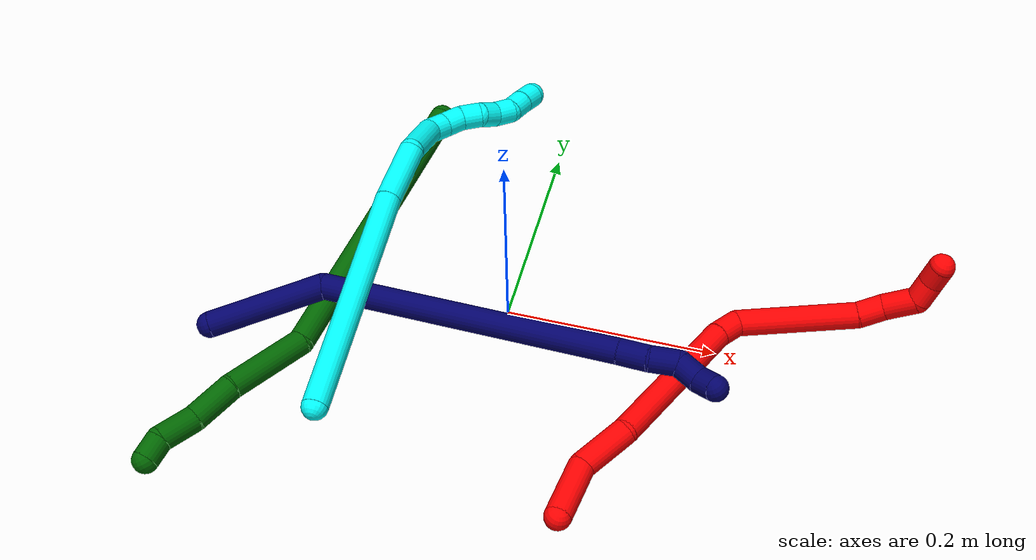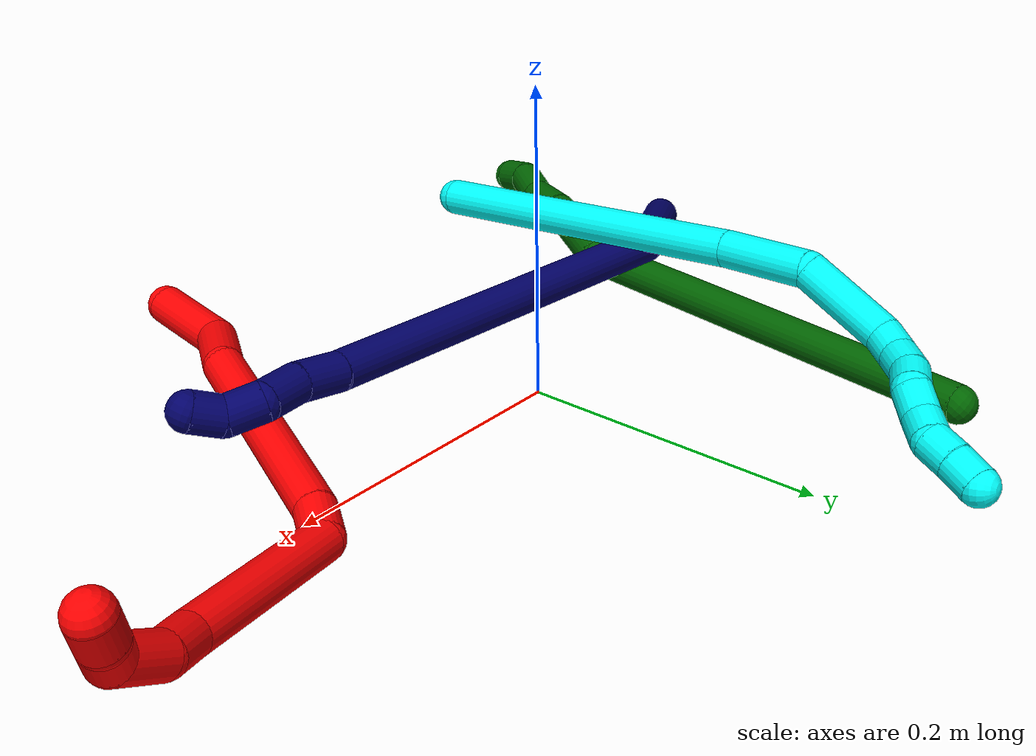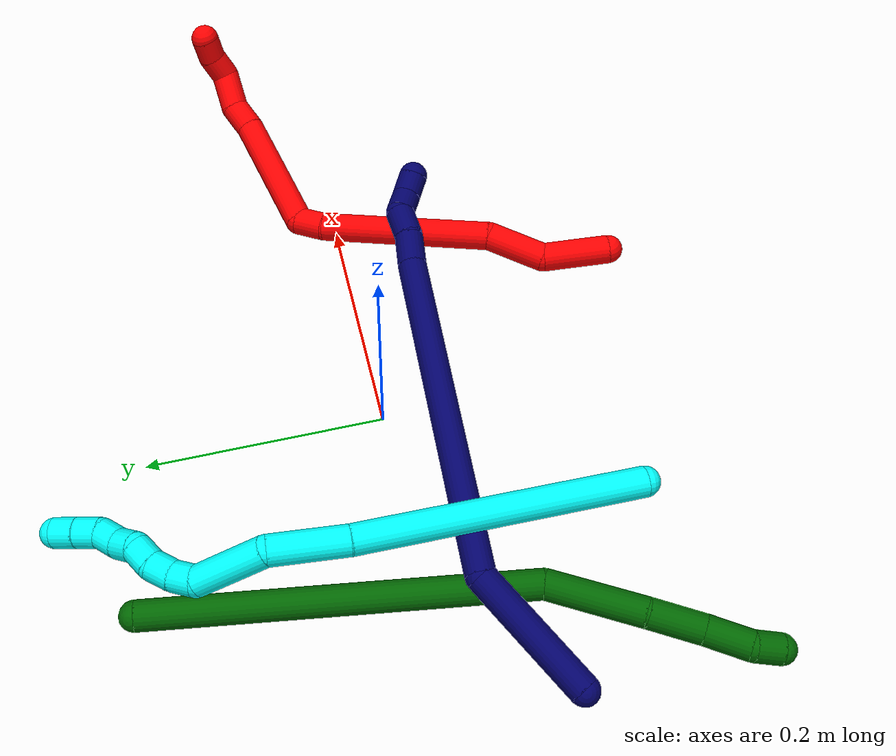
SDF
<sdf version="1.7">
 <world name="default">
  <model name="photoneo_s_sensor">
   <static>1</static>
   <pose>0 0 2 1.57079 1.57079 3.14159</pose>
   <link name="link">
    <inertial><mass>0.1</mass></inertial>
    <sensor name="sensor" type="depth">
     <update_rate>30</update_rate>
     <camera>
      <horizontal_fov>1.22</horizontal_fov>
      <image><width>1920</width><height>1200</height><format>B8G8R8</format></image>
      <clip><near>0.1</near><far>4</far></clip>
      <depth_camera><output>points</output></depth_camera>
     </camera>
     <plugin name="camera_plugin" filename="libgazebo_ros_depth_camera.so">
      <baseline>0.2</baseline>
      <alwaysOn>1</alwaysOn>
      <updateRate>0.0</updateRate>
      <cameraName>camera_ir</cameraName>
      <imageTopicName>/camera/color/image_raw</imageTopicName>
      <cameraInfoTopicName>/camera/color/camera_info</cameraInfoTopicName>
      <depthImageTopicName>/camera/depth/image_raw</depthImageTopicName>
      <depthImageCameraInfoTopicName>/camera/depth/camera_info</depthImageCameraInfoTopicName>
      <pointCloudTopicName>/camera/depth/points</pointCloudTopicName>
      <frameName>fr_optical</frameName>
      <pointCloudCutoff>0.1</pointCloudCutoff>
      <pointCloudCutoffMax>2.0</pointCloudCutoffMax>
      <distortionK1>0</distortionK1>
      <distortionK2>0</distortionK2>
      <distortionK3>0</distortionK3>
      <distortionT1>0</distortionT1>
      <distortionT2>0</distortionT2>
      <CxPrime>0</CxPrime>
      <Cx>0</Cx>
      <Cy>0</Cy>
      <focalLength>0</focalLength>
      <hackBaseline>0</hackBaseline>
     </plugin>
    </sensor>
   </link>
  </model>
  <model name="bin">
   <static>1</static>
   <link name="bottom">
    <collision name="collision-bottom">
     <pose>0 0 -0.01 0 -0 0</pose>
     <geometry><box><size>0.8 0.6 0.02</size></box></geometry>
     <surface>
      <friction><ode><mu>100</mu><mu2>100</mu2></ode></friction>
      <contact><collide_bitmask>65535</collide_bitmask></contact>
     </surface>
    </collision>
   </link>
   <link name="west_wall">
    <collision name="collision-west_wall">
     <pose>-0.41 0 0.1 0 -0 0</pose>
     <geometry><box><size>0.02 0.6 0.2</size></box></geometry>
     <surface>
      <friction><ode><mu>100</mu><mu2>100</mu2></ode></friction>
      <contact><collide_bitmask>65535</collide_bitmask></contact>
     </surface>
    </collision>
   </link>
   <link name="east_wall">
    <collision name="collision-east_wall">
     <pose>0.41 0 0.1 0 -0 0</pose>
     <geometry><box><size>0.02 0.6 0.2</size></box></geometry>
     <surface>
      <friction><ode><mu>100</mu><mu2>100</mu2></ode></friction>
      <contact><collide_bitmask>65535</collide_bitmask></contact>
     </surface>
    </collision>
   </link>
   <link name="south_wall">
    <collision name="collision-south_wall">
     <pose>0 -0.31 0.1 0 -0 0</pose>
     <geometry><box><size>0.8 0.02 0.2</size></box></geometry>
     <surface>
      <friction><ode><mu>100</mu><mu2>100</mu2></ode></friction>
      <contact><collide_bitmask>65535</collide_bitmask></contact>
     </surface>
    </collision>
   </link>
   <link name="north_wall">
    <collision name="collision-north_wall">
     <pose>0 0.31 0.1 0 -0 0</pose>
     <geometry><box><size>0.8 0.02 0.2</size></box></geometry>
     <surface>
      <friction><ode><mu>100</mu><mu2>100</mu2></ode></friction>
      <contact><collide_bitmask>65535</collide_bitmask></contact>
     </surface>
    </collision>
   </link>
  </model>
  <model name="2">
   <static>0</static>
   <link name="2">
    <collision name="collision-cylinder-e_1_1_4">
     <pose>0.02378 0.016461 -0.001014 -1.63232 0.964416 -1.01588</pose>
     <geometry><cylinder><radius>0.0125</radius><length>0.057879</length></cylinder></geometry>
     <surface>
      <friction><ode><mu>1.16</mu><mu2>1.16</mu2><slip1>0</slip1><slip2>0</slip2></ode></friction>
      <contact><ode><kp>1e+06</kp><kd>1</kd><max_vel>0</max_vel><min_depth>0.001</min_depth></ode></contact>
     </surface>
    </collision>
    <visual name="visual-cylinder-e_1_1_4">
     <pose>0.02378 0.016461 -0.001014 -1.63232 0.964416 -1.01588</pose>
     <geometry><cylinder><radius>0.0125</radius><length>0.057879</length></cylinder></geometry>
     <material><ambient>1 0 0 1</ambient></material>
    </visual>
    <collision name="collision-cylinder-e_2_4_5">
     <pose>0.05946 0.054369 -0.009586 -1.9096 0.482105 -0.668497</pose>
     <geometry><cylinder><radius>0.0125</radius><length>0.051329</length></cylinder></geometry>
     <surface>
      <friction><ode><mu>1.16</mu><mu2>1.16</mu2><slip1>0</slip1><slip2>0</slip2></ode></friction>
      <contact><ode><kp>1e+06</kp><kd>1</kd><max_vel>0</max_vel><min_depth>0.001</min_depth></ode></contact>
     </surface>
    </collision>
    <visual name="visual-cylinder-e_2_4_5">
     <pose>0.05946 0.054369 -0.009586 -1.9096 0.482105 -0.668497</pose>
     <geometry><cylinder><radius>0.0125</radius><length>0.051329</length></cylinder></geometry>
     <material><ambient>1 0 0 1</ambient></material>
    </visual>
    <collision name="collision-cylinder-e_3_5_6">
     <pose>0.11991 0.134198 -0.019774 -1.61583 0.693225 -0.722515</pose>
     <geometry><cylinder><radius>0.0125</radius><length>0.151956</length></cylinder></geometry>
     <surface>
      <friction><ode><mu>1.16</mu><mu2>1.16</mu2><slip1>0</slip1><slip2>0</slip2></ode></friction>
      <contact><ode><kp>1e+06</kp><kd>1</kd><max_vel>0</max_vel><min_depth>0.001</min_depth></ode></contact>
     </surface>
    </collision>
    <visual name="visual-cylinder-e_3_5_6">
     <pose>0.11991 0.134198 -0.019774 -1.61583 0.693225 -0.722515</pose>
     <geometry><cylinder><radius>0.0125</radius><length>0.151956</length></cylinder></geometry>
     <material><ambient>1 0 0 1</ambient></material>
    </visual>
    <collision name="collision-cylinder-e_4_6_7">
     <pose>0.174373 0.203882 -0.023126 -1.63443 0.481049 -0.511356</pose>
     <geometry><cylinder><radius>0.0125</radius><length>0.025549</length></cylinder></geometry>
     <surface>
      <friction><ode><mu>1.16</mu><mu2>1.16</mu2><slip1>0</slip1><slip2>0</slip2></ode></friction>
      <contact><ode><kp>1e+06</kp><kd>1</kd><max_vel>0</max_vel><min_depth>0.001</min_depth></ode></contact>
     </surface>
    </collision>
    <visual name="visual-cylinder-e_4_6_7">
     <pose>0.174373 0.203882 -0.023126 -1.63443 0.481049 -0.511356</pose>
     <geometry><cylinder><radius>0.0125</radius><length>0.025549</length></cylinder></geometry>
     <material><ambient>1 0 0 1</ambient></material>
    </visual>
    <collision name="collision-cylinder-e_5_7_8">
     <pose>0.167364 0.266506 -0.043461 -1.93587 -0.230951 0.333879</pose>
     <geometry><cylinder><radius>0.0125</radius><length>0.112883</length></cylinder></geometry>
     <surface>
      <friction><ode><mu>1.16</mu><mu2>1.16</mu2><slip1>0</slip1><slip2>0</slip2></ode></friction>
      <contact><ode><kp>1e+06</kp><kd>1</kd><max_vel>0</max_vel><min_depth>0.001</min_depth></ode></contact>
     </surface>
    </collision>
    <visual name="visual-cylinder-e_5_7_8">
     <pose>0.167364 0.266506 -0.043461 -1.93587 -0.230951 0.333879</pose>
     <geometry><cylinder><radius>0.0125</radius><length>0.112883</length></cylinder></geometry>
     <material><ambient>1 0 0 1</ambient></material>
    </visual>
    <collision name="collision-cylinder-e_6_8_9">
     <pose>0.154065 0.329092 -0.069154 -2.06549 -0.029623 0.049631</pose>
     <geometry><cylinder><radius>0.0125</radius><length>0.02561</length></cylinder></geometry>
     <surface>
      <friction><ode><mu>1.16</mu><mu2>1.16</mu2><slip1>0</slip1><slip2>0</slip2></ode></friction>
      <contact><ode><kp>1e+06</kp><kd>1</kd><max_vel>0</max_vel><min_depth>0.001</min_depth></ode></contact>
     </surface>
    </collision>
    <visual name="visual-cylinder-e_6_8_9">
     <pose>0.154065 0.329092 -0.069154 -2.06549 -0.029623 0.049631</pose>
     <geometry><cylinder><radius>0.0125</radius><length>0.02561</length></cylinder></geometry>
     <material><ambient>1 0 0 1</ambient></material>
    </visual>
    <collision name="collision-cylinder-e_7_9_10">
     <pose>0.148737 0.351502 -0.086062 -2.34196 -0.30825 0.704606</pose>
     <geometry><cylinder><radius>0.0125</radius><length>0.03262</length></cylinder></geometry>
     <surface>
      <friction><ode><mu>1.16</mu><mu2>1.16</mu2><slip1>0</slip1><slip2>0</slip2></ode></friction>
      <contact><ode><kp>1e+06</kp><kd>1</kd><max_vel>0</max_vel><min_depth>0.001</min_depth></ode></contact>
     </surface>
    </collision>
    <visual name="visual-cylinder-e_7_9_10">
     <pose>0.148737 0.351502 -0.086062 -2.34196 -0.30825 0.704606</pose>
     <geometry><cylinder><radius>0.0125</radius><length>0.03262</length></cylinder></geometry>
     <material><ambient>1 0 0 1</ambient></material>
    </visual>
    <collision name="collision-cylinder-e_8_10_11">
     <pose>0.146324 0.366188 -0.10703 -2.80541 0.231797 -1.20263</pose>
     <geometry><cylinder><radius>0.0125</radius><length>0.022065</length></cylinder></geometry>
     <surface>
      <friction><ode><mu>1.16</mu><mu2>1.16</mu2><slip1>0</slip1><slip2>0</slip2></ode></friction>
      <contact><ode><kp>1e+06</kp><kd>1</kd><max_vel>0</max_vel><min_depth>0.001</min_depth></ode></contact>
     </surface>
    </collision>
    <visual name="visual-cylinder-e_8_10_11">
     <pose>0.146324 0.366188 -0.10703 -2.80541 0.231797 -1.20263</pose>
     <geometry><cylinder><radius>0.0125</radius><length>0.022065</length></cylinder></geometry>
     <material><ambient>1 0 0 1</ambient></material>
    </visual>
    <collision name="collision-cylinder-e_9_11_2">
     <pose>0.1492 0.370983 -0.127137 -3.01666 0.034002 -0.530834</pose>
     <geometry><cylinder><radius>0.0125</radius><length>0.02011</length></cylinder></geometry>
     <surface>
      <friction><ode><mu>1.16</mu><mu2>1.16</mu2><slip1>0</slip1><slip2>0</slip2></ode></friction>
      <contact><ode><kp>1e+06</kp><kd>1</kd><max_vel>0</max_vel><min_depth>0.001</min_depth></ode></contact>
     </surface>
    </collision>
    <visual name="visual-cylinder-e_9_11_2">
     <pose>0.1492 0.370983 -0.127137 -3.01666 0.034002 -0.530834</pose>
     <geometry><cylinder><radius>0.0125</radius><length>0.02011</length></cylinder></geometry>
     <material><ambient>1 0 0 1</ambient></material>
    </visual>
    <collision name="collision-sphere-2">
     <pose>0.149542 0.372235 -0.137108 0 -0 0</pose>
     <geometry><sphere><radius>0.0125</radius></sphere></geometry>
     <surface>
      <friction><ode><mu>1.16</mu><mu2>1.16</mu2><slip1>0</slip1><slip2>0</slip2></ode></friction>
      <contact><ode><kp>1e+06</kp><kd>1</kd><max_vel>0</max_vel><min_depth>0.001</min_depth></ode></contact>
     </surface>
    </collision>
    <visual name="visual-sphere-2">
     <pose>0.149542 0.372235 -0.137108 0 -0 0</pose>
     <geometry><sphere><radius>0.0125</radius></sphere></geometry>
     <material><ambient>1 0 0 1</ambient></material>
    </visual>
    <collision name="collision-sphere-11">
     <pose>0.148858 0.369731 -0.117167 0 -0 0</pose>
     <geometry><sphere><radius>0.0125</radius></sphere></geometry>
     <surface>
      <friction><ode><mu>1.16</mu><mu2>1.16</mu2><slip1>0</slip1><slip2>0</slip2></ode></friction>
      <contact><ode><kp>1e+06</kp><kd>1</kd><max_vel>0</max_vel><min_depth>0.001</min_depth></ode></contact>
     </surface>
    </collision>
    <visual name="visual-sphere-11">
     <pose>0.148858 0.369731 -0.117167 0 -0 0</pose>
     <geometry><sphere><radius>0.0125</radius></sphere></geometry>
     <material><ambient>1 0 0 1</ambient></material>
    </visual>
    <collision name="collision-sphere-10">
     <pose>0.143789 0.362646 -0.096894 0 -0 0</pose>
     <geometry><sphere><radius>0.0125</radius></sphere></geometry>
     <surface>
      <friction><ode><mu>1.16</mu><mu2>1.16</mu2><slip1>0</slip1><slip2>0</slip2></ode></friction>
      <contact><ode><kp>1e+06</kp><kd>1</kd><max_vel>0</max_vel><min_depth>0.001</min_depth></ode></contact>
     </surface>
    </collision>
    <visual name="visual-sphere-10">
     <pose>0.143789 0.362646 -0.096894 0 -0 0</pose>
     <geometry><sphere><radius>0.0125</radius></sphere></geometry>
     <material><ambient>1 0 0 1</ambient></material>
    </visual>
    <collision name="collision-sphere-9">
     <pose>0.153686 0.340357 -0.07523 0 -0 0</pose>
     <geometry><sphere><radius>0.0125</radius></sphere></geometry>
     <surface>
      <friction><ode><mu>1.16</mu><mu2>1.16</mu2><slip1>0</slip1><slip2>0</slip2></ode></friction>
      <contact><ode><kp>1e+06</kp><kd>1</kd><max_vel>0</max_vel><min_depth>0.001</min_depth></ode></contact>
     </surface>
    </collision>
    <visual name="visual-sphere-9">
     <pose>0.153686 0.340357 -0.07523 0 -0 0</pose>
     <geometry><sphere><radius>0.0125</radius></sphere></geometry>
     <material><ambient>1 0 0 1</ambient></material>
    </visual>
    <collision name="collision-sphere-4">
     <pose>0.04756 0.032923 -0.002028 0 -0 0</pose>
     <geometry><sphere><radius>0.0125</radius></sphere></geometry>
     <surface>
      <friction><ode><mu>1.16</mu><mu2>1.16</mu2><slip1>0</slip1><slip2>0</slip2></ode></friction>
      <contact><ode><kp>1e+06</kp><kd>1</kd><max_vel>0</max_vel><min_depth>0.001</min_depth></ode></contact>
     </surface>
    </collision>
    <visual name="visual-sphere-4">
     <pose>0.04756 0.032923 -0.002028 0 -0 0</pose>
     <geometry><sphere><radius>0.0125</radius></sphere></geometry>
     <material><ambient>1 0 0 1</ambient></material>
    </visual>
    <collision name="collision-sphere-1">
     <geometry><sphere><radius>0.0125</radius></sphere></geometry>
     <surface>
      <friction><ode><mu>1.16</mu><mu2>1.16</mu2><slip1>0</slip1><slip2>0</slip2></ode></friction>
      <contact><ode><kp>1e+06</kp><kd>1</kd><max_vel>0</max_vel><min_depth>0.001</min_depth></ode></contact>
     </surface>
    </collision>
    <visual name="visual-sphere-1">
     <geometry><sphere><radius>0.0125</radius></sphere></geometry>
     <material><ambient>1 0 0 1</ambient></material>
    </visual>
    <collision name="collision-sphere-8">
     <pose>0.154444 0.317827 -0.063077 0 -0 0</pose>
     <geometry><sphere><radius>0.0125</radius></sphere></geometry>
     <surface>
      <friction><ode><mu>1.16</mu><mu2>1.16</mu2><slip1>0</slip1><slip2>0</slip2></ode></friction>
      <contact><ode><kp>1e+06</kp><kd>1</kd><max_vel>0</max_vel><min_depth>0.001</min_depth></ode></contact>
     </surface>
    </collision>
    <visual name="visual-sphere-8">
     <pose>0.154444 0.317827 -0.063077 0 -0 0</pose>
     <geometry><sphere><radius>0.0125</radius></sphere></geometry>
     <material><ambient>1 0 0 1</ambient></material>
    </visual>
    <collision name="collision-sphere-5">
     <pose>0.071359 0.075816 -0.017143 0 -0 0</pose>
     <geometry><sphere><radius>0.0125</radius></sphere></geometry>
     <surface>
      <friction><ode><mu>1.16</mu><mu2>1.16</mu2><slip1>0</slip1><slip2>0</slip2></ode></friction>
      <contact><ode><kp>1e+06</kp><kd>1</kd><max_vel>0</max_vel><min_depth>0.001</min_depth></ode></contact>
     </surface>
    </collision>
    <visual name="visual-sphere-5">
     <pose>0.071359 0.075816 -0.017143 0 -0 0</pose>
     <geometry><sphere><radius>0.0125</radius></sphere></geometry>
     <material><ambient>1 0 0 1</ambient></material>
    </visual>
    <collision name="collision-sphere-6">
     <pose>0.168462 0.19258 -0.022405 0 -0 0</pose>
     <geometry><sphere><radius>0.0125</radius></sphere></geometry>
     <surface>
      <friction><ode><mu>1.16</mu><mu2>1.16</mu2><slip1>0</slip1><slip2>0</slip2></ode></friction>
      <contact><ode><kp>1e+06</kp><kd>1</kd><max_vel>0</max_vel><min_depth>0.001</min_depth></ode></contact>
     </surface>
    </collision>
    <visual name="visual-sphere-6">
     <pose>0.168462 0.19258 -0.022405 0 -0 0</pose>
     <geometry><sphere><radius>0.0125</radius></sphere></geometry>
     <material><ambient>1 0 0 1</ambient></material>
    </visual>
    <collision name="collision-sphere-7">
     <pose>0.180284 0.215184 -0.023846 0 -0 0</pose>
     <geometry><sphere><radius>0.0125</radius></sphere></geometry>
     <surface>
      <friction><ode><mu>1.16</mu><mu2>1.16</mu2><slip1>0</slip1><slip2>0</slip2></ode></friction>
      <contact><ode><kp>1e+06</kp><kd>1</kd><max_vel>0</max_vel><min_depth>0.001</min_depth></ode></contact>
     </surface>
    </collision>
    <visual name="visual-sphere-7">
     <pose>0.180284 0.215184 -0.023846 0 -0 0</pose>
     <geometry><sphere><radius>0.0125</radius></sphere></geometry>
     <material><ambient>1 0 0 1</ambient></material>
    </visual>
    <inertial>
     <pose>0.122047 0.189725 -0.037098 0 -0 0</pose>
     <mass>0.5</mass>
     <inertia>
      <ixx>0.000193</ixx>
      <ixy>0</ixy>
      <ixz>0</ixz>
      <iyy>-9e-06</iyy>
      <iyz>0</iyz>
      <izz>-0.000566</izz>
     </inertia>
    </inertial>
   </link>
   <pose>0.105668 -0.227418 0.033177 -2.90918 -0.025899 2.04442</pose>
  </model>
  <model name="3">
   <static>0</static>
   <link name="3">
    <collision name="collision-cylinder-e_1_1_4">
     <pose>0.007689 0.003064 0.116987 -0.026188 0.065609 -0.000859</pose>
     <geometry><cylinder><radius>0.0125</radius><length>0.23456</length></cylinder></geometry>
     <surface>
      <friction><ode><mu>1.16</mu><mu2>1.16</mu2><slip1>0</slip1><slip2>0</slip2></ode></friction>
      <contact><ode><kp>1e+06</kp><kd>1</kd><max_vel>0</max_vel><min_depth>0.001</min_depth></ode></contact>
     </surface>
    </collision>
    <visual name="visual-cylinder-e_1_1_4">
     <pose>0.007689 0.003064 0.116987 -0.026188 0.065609 -0.000859</pose>
     <geometry><cylinder><radius>0.0125</radius><length>0.23456</length></cylinder></geometry>
     <material><ambient>0.003922 1 0.996078 1</ambient></material>
    </visual>
    <collision name="collision-cylinder-e_2_4_5">
     <pose>0.018826 0.004535 0.265219 0.050969 0.109756 0.002801</pose>
     <geometry><cylinder><radius>0.0125</radius><length>0.062949</length></cylinder></geometry>
     <surface>
      <friction><ode><mu>1.16</mu><mu2>1.16</mu2><slip1>0</slip1><slip2>0</slip2></ode></friction>
      <contact><ode><kp>1e+06</kp><kd>1</kd><max_vel>0</max_vel><min_depth>0.001</min_depth></ode></contact>
     </surface>
    </collision>
    <visual name="visual-cylinder-e_2_4_5">
     <pose>0.018826 0.004535 0.265219 0.050969 0.109756 0.002801</pose>
     <geometry><cylinder><radius>0.0125</radius><length>0.062949</length></cylinder></geometry>
     <material><ambient>0.003922 1 0.996078 1</ambient></material>
    </visual>
    <collision name="collision-cylinder-e_3_5_6">
     <pose>0.039703 0.007944 0.321644 -0.196141 0.596427 -0.060465</pose>
     <geometry><cylinder><radius>0.0125</radius><length>0.06206</length></cylinder></geometry>
     <surface>
      <friction><ode><mu>1.16</mu><mu2>1.16</mu2><slip1>0</slip1><slip2>0</slip2></ode></friction>
      <contact><ode><kp>1e+06</kp><kd>1</kd><max_vel>0</max_vel><min_depth>0.001</min_depth></ode></contact>
     </surface>
    </collision>
    <visual name="visual-cylinder-e_3_5_6">
     <pose>0.039703 0.007944 0.321644 -0.196141 0.596427 -0.060465</pose>
     <geometry><cylinder><radius>0.0125</radius><length>0.06206</length></cylinder></geometry>
     <material><ambient>0.003922 1 0.996078 1</ambient></material>
    </visual>
    <collision name="collision-cylinder-e_4_6_7">
     <pose>0.062358 0.009008 0.354539 0.472218 0.542884 0.133722</pose>
     <geometry><cylinder><radius>0.0125</radius><length>0.020232</length></cylinder></geometry>
     <surface>
      <friction><ode><mu>1.16</mu><mu2>1.16</mu2><slip1>0</slip1><slip2>0</slip2></ode></friction>
      <contact><ode><kp>1e+06</kp><kd>1</kd><max_vel>0</max_vel><min_depth>0.001</min_depth></ode></contact>
     </surface>
    </collision>
    <visual name="visual-cylinder-e_4_6_7">
     <pose>0.062358 0.009008 0.354539 0.472218 0.542884 0.133722</pose>
     <geometry><cylinder><radius>0.0125</radius><length>0.020232</length></cylinder></geometry>
     <material><ambient>0.003922 1 0.996078 1</ambient></material>
    </visual>
    <collision name="collision-cylinder-e_5_7_8">
     <pose>0.071213 -0.00086 0.36951 0.68485 0.369473 0.133028</pose>
     <geometry><cylinder><radius>0.0125</radius><length>0.020097</length></cylinder></geometry>
     <surface>
      <friction><ode><mu>1.16</mu><mu2>1.16</mu2><slip1>0</slip1><slip2>0</slip2></ode></friction>
      <contact><ode><kp>1e+06</kp><kd>1</kd><max_vel>0</max_vel><min_depth>0.001</min_depth></ode></contact>
     </surface>
    </collision>
    <visual name="visual-cylinder-e_5_7_8">
     <pose>0.071213 -0.00086 0.36951 0.68485 0.369473 0.133028</pose>
     <geometry><cylinder><radius>0.0125</radius><length>0.020097</length></cylinder></geometry>
     <material><ambient>0.003922 1 0.996078 1</ambient></material>
    </visual>
    <collision name="collision-cylinder-e_6_8_9">
     <pose>0.078623 -0.014746 0.381569 1.02799 0.386337 0.219993</pose>
     <geometry><cylinder><radius>0.0125</radius><length>0.020069</length></cylinder></geometry>
     <surface>
      <friction><ode><mu>1.16</mu><mu2>1.16</mu2><slip1>0</slip1><slip2>0</slip2></ode></friction>
      <contact><ode><kp>1e+06</kp><kd>1</kd><max_vel>0</max_vel><min_depth>0.001</min_depth></ode></contact>
     </surface>
    </collision>
    <visual name="visual-cylinder-e_6_8_9">
     <pose>0.078623 -0.014746 0.381569 1.02799 0.386337 0.219993</pose>
     <geometry><cylinder><radius>0.0125</radius><length>0.020069</length></cylinder></geometry>
     <material><ambient>0.003922 1 0.996078 1</ambient></material>
    </visual>
    <collision name="collision-cylinder-e_7_9_10">
     <pose>0.089749 -0.026216 0.392184 0.543242 0.824526 0.242399</pose>
     <geometry><cylinder><radius>0.0125</radius><length>0.020009</length></cylinder></geometry>
     <surface>
      <friction><ode><mu>1.16</mu><mu2>1.16</mu2><slip1>0</slip1><slip2>0</slip2></ode></friction>
      <contact><ode><kp>1e+06</kp><kd>1</kd><max_vel>0</max_vel><min_depth>0.001</min_depth></ode></contact>
     </surface>
    </collision>
    <visual name="visual-cylinder-e_7_9_10">
     <pose>0.089749 -0.026216 0.392184 0.543242 0.824526 0.242399</pose>
     <geometry><cylinder><radius>0.0125</radius><length>0.020009</length></cylinder></geometry>
     <material><ambient>0.003922 1 0.996078 1</ambient></material>
    </visual>
    <collision name="collision-cylinder-e_8_10_11">
     <pose>0.102018 -0.035729 0.404306 0.760598 0.514621 0.209617</pose>
     <geometry><cylinder><radius>0.0125</radius><length>0.020006</length></cylinder></geometry>
     <surface>
      <friction><ode><mu>1.16</mu><mu2>1.16</mu2><slip1>0</slip1><slip2>0</slip2></ode></friction>
      <contact><ode><kp>1e+06</kp><kd>1</kd><max_vel>0</max_vel><min_depth>0.001</min_depth></ode></contact>
     </surface>
    </collision>
    <visual name="visual-cylinder-e_8_10_11">
     <pose>0.102018 -0.035729 0.404306 0.760598 0.514621 0.209617</pose>
     <geometry><cylinder><radius>0.0125</radius><length>0.020006</length></cylinder></geometry>
     <material><ambient>0.003922 1 0.996078 1</ambient></material>
    </visual>
    <collision name="collision-cylinder-e_9_11_12">
     <pose>0.11129 -0.043855 0.419365 0.238126 0.449863 0.054729</pose>
     <geometry><cylinder><radius>0.0125</radius><length>0.02</length></cylinder></geometry>
     <surface>
      <friction><ode><mu>1.16</mu><mu2>1.16</mu2><slip1>0</slip1><slip2>0</slip2></ode></friction>
      <contact><ode><kp>1e+06</kp><kd>1</kd><max_vel>0</max_vel><min_depth>0.001</min_depth></ode></contact>
     </surface>
    </collision>
    <visual name="visual-cylinder-e_9_11_12">
     <pose>0.11129 -0.043855 0.419365 0.238126 0.449863 0.054729</pose>
     <geometry><cylinder><radius>0.0125</radius><length>0.02</length></cylinder></geometry>
     <material><ambient>0.003922 1 0.996078 1</ambient></material>
    </visual>
    <collision name="collision-cylinder-e_10_12_2">
     <pose>0.120573 -0.047992 0.436588 0.233205 0.515547 0.061742</pose>
     <geometry><cylinder><radius>0.0125</radius><length>0.020018</length></cylinder></geometry>
     <surface>
      <friction><ode><mu>1.16</mu><mu2>1.16</mu2><slip1>0</slip1><slip2>0</slip2></ode></friction>
      <contact><ode><kp>1e+06</kp><kd>1</kd><max_vel>0</max_vel><min_depth>0.001</min_depth></ode></contact>
     </surface>
    </collision>
    <visual name="visual-cylinder-e_10_12_2">
     <pose>0.120573 -0.047992 0.436588 0.233205 0.515547 0.061742</pose>
     <geometry><cylinder><radius>0.0125</radius><length>0.020018</length></cylinder></geometry>
     <material><ambient>0.003922 1 0.996078 1</ambient></material>
    </visual>
    <collision name="collision-sphere-2">
     <pose>0.125507 -0.050004 0.445061 0 -0 0</pose>
     <geometry><sphere><radius>0.0125</radius></sphere></geometry>
     <surface>
      <friction><ode><mu>1.16</mu><mu2>1.16</mu2><slip1>0</slip1><slip2>0</slip2></ode></friction>
      <contact><ode><kp>1e+06</kp><kd>1</kd><max_vel>0</max_vel><min_depth>0.001</min_depth></ode></contact>
     </surface>
    </collision>
    <visual name="visual-sphere-2">
     <pose>0.125507 -0.050004 0.445061 0 -0 0</pose>
     <geometry><sphere><radius>0.0125</radius></sphere></geometry>
     <material><ambient>0.003922 1 0.996078 1</ambient></material>
    </visual>
    <collision name="collision-sphere-12">
     <pose>0.115638 -0.04598 0.428116 0 -0 0</pose>
     <geometry><sphere><radius>0.0125</radius></sphere></geometry>
     <surface>
      <friction><ode><mu>1.16</mu><mu2>1.16</mu2><slip1>0</slip1><slip2>0</slip2></ode></friction>
      <contact><ode><kp>1e+06</kp><kd>1</kd><max_vel>0</max_vel><min_depth>0.001</min_depth></ode></contact>
     </surface>
    </collision>
    <visual name="visual-sphere-12">
     <pose>0.115638 -0.04598 0.428116 0 -0 0</pose>
     <geometry><sphere><radius>0.0125</radius></sphere></geometry>
     <material><ambient>0.003922 1 0.996078 1</ambient></material>
    </visual>
    <collision name="collision-sphere-11">
     <pose>0.106941 -0.041731 0.410614 0 -0 0</pose>
     <geometry><sphere><radius>0.0125</radius></sphere></geometry>
     <surface>
      <friction><ode><mu>1.16</mu><mu2>1.16</mu2><slip1>0</slip1><slip2>0</slip2></ode></friction>
      <contact><ode><kp>1e+06</kp><kd>1</kd><max_vel>0</max_vel><min_depth>0.001</min_depth></ode></contact>
     </surface>
    </collision>
    <visual name="visual-sphere-11">
     <pose>0.106941 -0.041731 0.410614 0 -0 0</pose>
     <geometry><sphere><radius>0.0125</radius></sphere></geometry>
     <material><ambient>0.003922 1 0.996078 1</ambient></material>
    </visual>
    <collision name="collision-sphere-10">
     <pose>0.097094 -0.029726 0.397998 0 -0 0</pose>
     <geometry><sphere><radius>0.0125</radius></sphere></geometry>
     <surface>
      <friction><ode><mu>1.16</mu><mu2>1.16</mu2><slip1>0</slip1><slip2>0</slip2></ode></friction>
      <contact><ode><kp>1e+06</kp><kd>1</kd><max_vel>0</max_vel><min_depth>0.001</min_depth></ode></contact>
     </surface>
    </collision>
    <visual name="visual-sphere-10">
     <pose>0.097094 -0.029726 0.397998 0 -0 0</pose>
     <geometry><sphere><radius>0.0125</radius></sphere></geometry>
     <material><ambient>0.003922 1 0.996078 1</ambient></material>
    </visual>
    <collision name="collision-sphere-9">
     <pose>0.082404 -0.022705 0.38637 0 -0 0</pose>
     <geometry><sphere><radius>0.0125</radius></sphere></geometry>
     <surface>
      <friction><ode><mu>1.16</mu><mu2>1.16</mu2><slip1>0</slip1><slip2>0</slip2></ode></friction>
      <contact><ode><kp>1e+06</kp><kd>1</kd><max_vel>0</max_vel><min_depth>0.001</min_depth></ode></contact>
     </surface>
    </collision>
    <visual name="visual-sphere-9">
     <pose>0.082404 -0.022705 0.38637 0 -0 0</pose>
     <geometry><sphere><radius>0.0125</radius></sphere></geometry>
     <material><ambient>0.003922 1 0.996078 1</ambient></material>
    </visual>
    <collision name="collision-sphere-4">
     <pose>0.015378 0.006129 0.233975 0 -0 0</pose>
     <geometry><sphere><radius>0.0125</radius></sphere></geometry>
     <surface>
      <friction><ode><mu>1.16</mu><mu2>1.16</mu2><slip1>0</slip1><slip2>0</slip2></ode></friction>
      <contact><ode><kp>1e+06</kp><kd>1</kd><max_vel>0</max_vel><min_depth>0.001</min_depth></ode></contact>
     </surface>
    </collision>
    <visual name="visual-sphere-4">
     <pose>0.015378 0.006129 0.233975 0 -0 0</pose>
     <geometry><sphere><radius>0.0125</radius></sphere></geometry>
     <material><ambient>0.003922 1 0.996078 1</ambient></material>
    </visual>
    <collision name="collision-sphere-1">
     <geometry><sphere><radius>0.0125</radius></sphere></geometry>
     <surface>
      <friction><ode><mu>1.16</mu><mu2>1.16</mu2><slip1>0</slip1><slip2>0</slip2></ode></friction>
      <contact><ode><kp>1e+06</kp><kd>1</kd><max_vel>0</max_vel><min_depth>0.001</min_depth></ode></contact>
     </surface>
    </collision>
    <visual name="visual-sphere-1">
     <geometry><sphere><radius>0.0125</radius></sphere></geometry>
     <material><ambient>0.003922 1 0.996078 1</ambient></material>
    </visual>
    <collision name="collision-sphere-8">
     <pose>0.074842 -0.006787 0.376768 0 -0 0</pose>
     <geometry><sphere><radius>0.0125</radius></sphere></geometry>
     <surface>
      <friction><ode><mu>1.16</mu><mu2>1.16</mu2><slip1>0</slip1><slip2>0</slip2></ode></friction>
      <contact><ode><kp>1e+06</kp><kd>1</kd><max_vel>0</max_vel><min_depth>0.001</min_depth></ode></contact>
     </surface>
    </collision>
    <visual name="visual-sphere-8">
     <pose>0.074842 -0.006787 0.376768 0 -0 0</pose>
     <geometry><sphere><radius>0.0125</radius></sphere></geometry>
     <material><ambient>0.003922 1 0.996078 1</ambient></material>
    </visual>
    <collision name="collision-sphere-5">
     <pose>0.022273 0.002941 0.296464 0 -0 0</pose>
     <geometry><sphere><radius>0.0125</radius></sphere></geometry>
     <surface>
      <friction><ode><mu>1.16</mu><mu2>1.16</mu2><slip1>0</slip1><slip2>0</slip2></ode></friction>
      <contact><ode><kp>1e+06</kp><kd>1</kd><max_vel>0</max_vel><min_depth>0.001</min_depth></ode></contact>
     </surface>
    </collision>
    <visual name="visual-sphere-5">
     <pose>0.022273 0.002941 0.296464 0 -0 0</pose>
     <geometry><sphere><radius>0.0125</radius></sphere></geometry>
     <material><ambient>0.003922 1 0.996078 1</ambient></material>
    </visual>
    <collision name="collision-sphere-6">
     <pose>0.057132 0.012947 0.346825 0 -0 0</pose>
     <geometry><sphere><radius>0.0125</radius></sphere></geometry>
     <surface>
      <friction><ode><mu>1.16</mu><mu2>1.16</mu2><slip1>0</slip1><slip2>0</slip2></ode></friction>
      <contact><ode><kp>1e+06</kp><kd>1</kd><max_vel>0</max_vel><min_depth>0.001</min_depth></ode></contact>
     </surface>
    </collision>
    <visual name="visual-sphere-6">
     <pose>0.057132 0.012947 0.346825 0 -0 0</pose>
     <geometry><sphere><radius>0.0125</radius></sphere></geometry>
     <material><ambient>0.003922 1 0.996078 1</ambient></material>
    </visual>
    <collision name="collision-sphere-7">
     <pose>0.067584 0.005068 0.362252 0 -0 0</pose>
     <geometry><sphere><radius>0.0125</radius></sphere></geometry>
     <surface>
      <friction><ode><mu>1.16</mu><mu2>1.16</mu2><slip1>0</slip1><slip2>0</slip2></ode></friction>
      <contact><ode><kp>1e+06</kp><kd>1</kd><max_vel>0</max_vel><min_depth>0.001</min_depth></ode></contact>
     </surface>
    </collision>
    <visual name="visual-sphere-7">
     <pose>0.067584 0.005068 0.362252 0 -0 0</pose>
     <geometry><sphere><radius>0.0125</radius></sphere></geometry>
     <material><ambient>0.003922 1 0.996078 1</ambient></material>
    </visual>
    <inertial>
     <pose>0.036399 -0.003422 0.238833 0 -0 0</pose>
     <mass>0.5</mass>
     <inertia>
      <ixx>0.001142</ixx>
      <ixy>0</ixy>
      <ixz>0</ixz>
      <iyy>0.001134</iyy>
      <iyz>0</iyz>
      <izz>-8.3e-05</izz>
     </inertia>
    </inertial>
   </link>
   <pose>-0.126422 -0.181509 0.050691 -1.11099 1.23332 0.452985</pose>
  </model>
  <model name="6">
   <static>0</static>
   <link name="6">
    <collision name="collision-cylinder-e_1_1_4">
     <pose>-0.04932 -0.14199 0.047915 1.24534 -0.317949 -0.229205</pose>
     <geometry><cylinder><radius>0.0125</radius><length>0.315527</length></cylinder></geometry>
     <surface>
      <friction><ode><mu>1.16</mu><mu2>1.16</mu2><slip1>0</slip1><slip2>0</slip2></ode></friction>
      <contact><ode><kp>1e+06</kp><kd>1</kd><max_vel>0</max_vel><min_depth>0.001</min_depth></ode></contact>
     </surface>
    </collision>
    <visual name="visual-cylinder-e_1_1_4">
     <pose>-0.04932 -0.14199 0.047915 1.24534 -0.317949 -0.229205</pose>
     <geometry><cylinder><radius>0.0125</radius><length>0.315527</length></cylinder></geometry>
     <material><ambient>0 0.392157 0.003922 1</ambient></material>
    </visual>
    <collision name="collision-cylinder-e_2_4_5">
     <pose>-0.101965 -0.324381 0.094755 1.59739 -0.082091 -0.084301</pose>
     <geometry><cylinder><radius>0.0125</radius><length>0.081106</length></cylinder></geometry>
     <surface>
      <friction><ode><mu>1.16</mu><mu2>1.16</mu2><slip1>0</slip1><slip2>0</slip2></ode></friction>
      <contact><ode><kp>1e+06</kp><kd>1</kd><max_vel>0</max_vel><min_depth>0.001</min_depth></ode></contact>
     </surface>
    </collision>
    <visual name="visual-cylinder-e_2_4_5">
     <pose>-0.101965 -0.324381 0.094755 1.59739 -0.082091 -0.084301</pose>
     <geometry><cylinder><radius>0.0125</radius><length>0.081106</length></cylinder></geometry>
     <material><ambient>0 0.392157 0.003922 1</ambient></material>
    </visual>
    <collision name="collision-cylinder-e_3_5_6">
     <pose>-0.105393 -0.386748 0.096685 1.43485 -0.004612 -0.004024</pose>
     <geometry><cylinder><radius>0.0125</radius><length>0.044339</length></cylinder></geometry>
     <surface>
      <friction><ode><mu>1.16</mu><mu2>1.16</mu2><slip1>0</slip1><slip2>0</slip2></ode></friction>
      <contact><ode><kp>1e+06</kp><kd>1</kd><max_vel>0</max_vel><min_depth>0.001</min_depth></ode></contact>
     </surface>
    </collision>
    <visual name="visual-cylinder-e_3_5_6">
     <pose>-0.105393 -0.386748 0.096685 1.43485 -0.004612 -0.004024</pose>
     <geometry><cylinder><radius>0.0125</radius><length>0.044339</length></cylinder></geometry>
     <material><ambient>0 0.392157 0.003922 1</ambient></material>
    </visual>
    <collision name="collision-cylinder-e_4_6_7">
     <pose>-0.106077 -0.427008 0.098763 1.62137 -0.031776 -0.033425</pose>
     <geometry><cylinder><radius>0.0125</radius><length>0.036654</length></cylinder></geometry>
     <surface>
      <friction><ode><mu>1.16</mu><mu2>1.16</mu2><slip1>0</slip1><slip2>0</slip2></ode></friction>
      <contact><ode><kp>1e+06</kp><kd>1</kd><max_vel>0</max_vel><min_depth>0.001</min_depth></ode></contact>
     </surface>
    </collision>
    <visual name="visual-cylinder-e_4_6_7">
     <pose>-0.106077 -0.427008 0.098763 1.62137 -0.031776 -0.033425</pose>
     <geometry><cylinder><radius>0.0125</radius><length>0.036654</length></cylinder></geometry>
     <material><ambient>0 0.392157 0.003922 1</ambient></material>
    </visual>
    <collision name="collision-cylinder-e_5_7_2">
     <pose>-0.107701 -0.455653 0.101951 1.19245 -0.093222 -0.063287</pose>
     <geometry><cylinder><radius>0.0125</radius><length>0.022373</length></cylinder></geometry>
     <surface>
      <friction><ode><mu>1.16</mu><mu2>1.16</mu2><slip1>0</slip1><slip2>0</slip2></ode></friction>
      <contact><ode><kp>1e+06</kp><kd>1</kd><max_vel>0</max_vel><min_depth>0.001</min_depth></ode></contact>
     </surface>
    </collision>
    <visual name="visual-cylinder-e_5_7_2">
     <pose>-0.107701 -0.455653 0.101951 1.19245 -0.093222 -0.063287</pose>
     <geometry><cylinder><radius>0.0125</radius><length>0.022373</length></cylinder></geometry>
     <material><ambient>0 0.392157 0.003922 1</ambient></material>
    </visual>
    <collision name="collision-sphere-2">
     <pose>-0.108742 -0.466003 0.106066 0 -0 0</pose>
     <geometry><sphere><radius>0.0125</radius></sphere></geometry>
     <surface>
      <friction><ode><mu>1.16</mu><mu2>1.16</mu2><slip1>0</slip1><slip2>0</slip2></ode></friction>
      <contact><ode><kp>1e+06</kp><kd>1</kd><max_vel>0</max_vel><min_depth>0.001</min_depth></ode></contact>
     </surface>
    </collision>
    <visual name="visual-sphere-2">
     <pose>-0.108742 -0.466003 0.106066 0 -0 0</pose>
     <geometry><sphere><radius>0.0125</radius></sphere></geometry>
     <material><ambient>0 0.392157 0.003922 1</ambient></material>
    </visual>
    <collision name="collision-sphere-7">
     <pose>-0.106659 -0.445302 0.097837 0 -0 0</pose>
     <geometry><sphere><radius>0.0125</radius></sphere></geometry>
     <surface>
      <friction><ode><mu>1.16</mu><mu2>1.16</mu2><slip1>0</slip1><slip2>0</slip2></ode></friction>
      <contact><ode><kp>1e+06</kp><kd>1</kd><max_vel>0</max_vel><min_depth>0.001</min_depth></ode></contact>
     </surface>
    </collision>
    <visual name="visual-sphere-7">
     <pose>-0.106659 -0.445302 0.097837 0 -0 0</pose>
     <geometry><sphere><radius>0.0125</radius></sphere></geometry>
     <material><ambient>0 0.392157 0.003922 1</ambient></material>
    </visual>
    <collision name="collision-sphere-6">
     <pose>-0.105495 -0.408713 0.099689 0 -0 0</pose>
     <geometry><sphere><radius>0.0125</radius></sphere></geometry>
     <surface>
      <friction><ode><mu>1.16</mu><mu2>1.16</mu2><slip1>0</slip1><slip2>0</slip2></ode></friction>
      <contact><ode><kp>1e+06</kp><kd>1</kd><max_vel>0</max_vel><min_depth>0.001</min_depth></ode></contact>
     </surface>
    </collision>
    <visual name="visual-sphere-6">
     <pose>-0.105495 -0.408713 0.099689 0 -0 0</pose>
     <geometry><sphere><radius>0.0125</radius></sphere></geometry>
     <material><ambient>0 0.392157 0.003922 1</ambient></material>
    </visual>
    <collision name="collision-sphere-5">
     <pose>-0.10529 -0.364783 0.09368 0 -0 0</pose>
     <geometry><sphere><radius>0.0125</radius></sphere></geometry>
     <surface>
      <friction><ode><mu>1.16</mu><mu2>1.16</mu2><slip1>0</slip1><slip2>0</slip2></ode></friction>
      <contact><ode><kp>1e+06</kp><kd>1</kd><max_vel>0</max_vel><min_depth>0.001</min_depth></ode></contact>
     </surface>
    </collision>
    <visual name="visual-sphere-5">
     <pose>-0.10529 -0.364783 0.09368 0 -0 0</pose>
     <geometry><sphere><radius>0.0125</radius></sphere></geometry>
     <material><ambient>0 0.392157 0.003922 1</ambient></material>
    </visual>
    <collision name="collision-sphere-1">
     <geometry><sphere><radius>0.0125</radius></sphere></geometry>
     <surface>
      <friction><ode><mu>1.16</mu><mu2>1.16</mu2><slip1>0</slip1><slip2>0</slip2></ode></friction>
      <contact><ode><kp>1e+06</kp><kd>1</kd><max_vel>0</max_vel><min_depth>0.001</min_depth></ode></contact>
     </surface>
    </collision>
    <visual name="visual-sphere-1">
     <geometry><sphere><radius>0.0125</radius></sphere></geometry>
     <material><ambient>0 0.392157 0.003922 1</ambient></material>
    </visual>
    <collision name="collision-sphere-4">
     <pose>-0.09864 -0.283979 0.09583 0 -0 0</pose>
     <geometry><sphere><radius>0.0125</radius></sphere></geometry>
     <surface>
      <friction><ode><mu>1.16</mu><mu2>1.16</mu2><slip1>0</slip1><slip2>0</slip2></ode></friction>
      <contact><ode><kp>1e+06</kp><kd>1</kd><max_vel>0</max_vel><min_depth>0.001</min_depth></ode></contact>
     </surface>
    </collision>
    <visual name="visual-sphere-4">
     <pose>-0.09864 -0.283979 0.09583 0 -0 0</pose>
     <geometry><sphere><radius>0.0125</radius></sphere></geometry>
     <material><ambient>0 0.392157 0.003922 1</ambient></material>
    </visual>
    <inertial>
     <pose>-0.069605 -0.22821 0.065983 0 -0 0</pose>
     <mass>0.5</mass>
     <inertia>
      <ixx>0.001916</ixx>
      <ixy>0</ixy>
      <ixz>0</ixz>
      <iyy>0.000388</iyy>
      <iyz>0</iyz>
      <izz>0.003265</izz>
     </inertia>
    </inertial>
   </link>
   <pose>-0.130539 0.222444 0.011495 -3.13046 0.754177 2.55463</pose>
  </model>
  <model name="7">
   <static>0</static>
   <link name="7">
    <collision name="collision-cylinder-e_1_1_4">
     <pose>0.053056 0.014404 -0.011131 -2.22869 1.24028 -1.93686</pose>
     <geometry><cylinder><radius>0.0125</radius><length>0.112184</length></cylinder></geometry>
     <surface>
      <friction><ode><mu>1.16</mu><mu2>1.16</mu2><slip1>0</slip1><slip2>0</slip2></ode></friction>
      <contact><ode><kp>1e+06</kp><kd>1</kd><max_vel>0</max_vel><min_depth>0.001</min_depth></ode></contact>
     </surface>
    </collision>
    <visual name="visual-cylinder-e_1_1_4">
     <pose>0.053056 0.014404 -0.011131 -2.22869 1.24028 -1.93686</pose>
     <geometry><cylinder><radius>0.0125</radius><length>0.112184</length></cylinder></geometry>
     <material><ambient>0.003922 0 0.403922 1</ambient></material>
    </visual>
    <collision name="collision-cylinder-e_2_4_5">
     <pose>0.229163 -0.007412 -0.087179 2.63268 1.02735 2.27765</pose>
     <geometry><cylinder><radius>0.0125</radius><length>0.287527</length></cylinder></geometry>
     <surface>
      <friction><ode><mu>1.16</mu><mu2>1.16</mu2><slip1>0</slip1><slip2>0</slip2></ode></friction>
      <contact><ode><kp>1e+06</kp><kd>1</kd><max_vel>0</max_vel><min_depth>0.001</min_depth></ode></contact>
     </surface>
    </collision>
    <visual name="visual-cylinder-e_2_4_5">
     <pose>0.229163 -0.007412 -0.087179 2.63268 1.02735 2.27765</pose>
     <geometry><cylinder><radius>0.0125</radius><length>0.287527</length></cylinder></geometry>
     <material><ambient>0.003922 0 0.403922 1</ambient></material>
    </visual>
    <collision name="collision-cylinder-e_3_5_6">
     <pose>0.364748 -0.048595 -0.157751 2.42115 1.03021 1.96737</pose>
     <geometry><cylinder><radius>0.0125</radius><length>0.029237</length></cylinder></geometry>
     <surface>
      <friction><ode><mu>1.16</mu><mu2>1.16</mu2><slip1>0</slip1><slip2>0</slip2></ode></friction>
      <contact><ode><kp>1e+06</kp><kd>1</kd><max_vel>0</max_vel><min_depth>0.001</min_depth></ode></contact>
     </surface>
    </collision>
    <visual name="visual-cylinder-e_3_5_6">
     <pose>0.364748 -0.048595 -0.157751 2.42115 1.03021 1.96737</pose>
     <geometry><cylinder><radius>0.0125</radius><length>0.029237</length></cylinder></geometry>
     <material><ambient>0.003922 0 0.403922 1</ambient></material>
    </visual>
    <collision name="collision-cylinder-e_4_6_7">
     <pose>0.38904 -0.055389 -0.169798 2.86272 1.05605 2.66932</pose>
     <geometry><cylinder><radius>0.0125</radius><length>0.027016</length></cylinder></geometry>
     <surface>
      <friction><ode><mu>1.16</mu><mu2>1.16</mu2><slip1>0</slip1><slip2>0</slip2></ode></friction>
      <contact><ode><kp>1e+06</kp><kd>1</kd><max_vel>0</max_vel><min_depth>0.001</min_depth></ode></contact>
     </surface>
    </collision>
    <visual name="visual-cylinder-e_4_6_7">
     <pose>0.38904 -0.055389 -0.169798 2.86272 1.05605 2.66932</pose>
     <geometry><cylinder><radius>0.0125</radius><length>0.027016</length></cylinder></geometry>
     <material><ambient>0.003922 0 0.403922 1</ambient></material>
    </visual>
    <collision name="collision-cylinder-e_5_7_8">
     <pose>0.407167 -0.063712 -0.183589 2.4212 0.574355 1.33003</pose>
     <geometry><cylinder><radius>0.0125</radius><length>0.023447</length></cylinder></geometry>
     <surface>
      <friction><ode><mu>1.16</mu><mu2>1.16</mu2><slip1>0</slip1><slip2>0</slip2></ode></friction>
      <contact><ode><kp>1e+06</kp><kd>1</kd><max_vel>0</max_vel><min_depth>0.001</min_depth></ode></contact>
     </surface>
    </collision>
    <visual name="visual-cylinder-e_5_7_8">
     <pose>0.407167 -0.063712 -0.183589 2.4212 0.574355 1.33003</pose>
     <geometry><cylinder><radius>0.0125</radius><length>0.023447</length></cylinder></geometry>
     <material><ambient>0.003922 0 0.403922 1</ambient></material>
    </visual>
    <collision name="collision-cylinder-e_6_8_2">
     <pose>0.420617 -0.077515 -0.192539 1.78014 0.75842 0.914546</pose>
     <geometry><cylinder><radius>0.0125</radius><length>0.02059</length></cylinder></geometry>
     <surface>
      <friction><ode><mu>1.16</mu><mu2>1.16</mu2><slip1>0</slip1><slip2>0</slip2></ode></friction>
      <contact><ode><kp>1e+06</kp><kd>1</kd><max_vel>0</max_vel><min_depth>0.001</min_depth></ode></contact>
     </surface>
    </collision>
    <visual name="visual-cylinder-e_6_8_2">
     <pose>0.420617 -0.077515 -0.192539 1.78014 0.75842 0.914546</pose>
     <geometry><cylinder><radius>0.0125</radius><length>0.02059</length></cylinder></geometry>
     <material><ambient>0.003922 0 0.403922 1</ambient></material>
    </visual>
    <collision name="collision-sphere-2">
     <pose>0.427697 -0.084825 -0.194092 0 -0 0</pose>
     <geometry><sphere><radius>0.0125</radius></sphere></geometry>
     <surface>
      <friction><ode><mu>1.16</mu><mu2>1.16</mu2><slip1>0</slip1><slip2>0</slip2></ode></friction>
      <contact><ode><kp>1e+06</kp><kd>1</kd><max_vel>0</max_vel><min_depth>0.001</min_depth></ode></contact>
     </surface>
    </collision>
    <visual name="visual-sphere-2">
     <pose>0.427697 -0.084825 -0.194092 0 -0 0</pose>
     <geometry><sphere><radius>0.0125</radius></sphere></geometry>
     <material><ambient>0.003922 0 0.403922 1</ambient></material>
    </visual>
    <collision name="collision-sphere-4">
     <pose>0.106112 0.028809 -0.022261 0 -0 0</pose>
     <geometry><sphere><radius>0.0125</radius></sphere></geometry>
     <surface>
      <friction><ode><mu>1.16</mu><mu2>1.16</mu2><slip1>0</slip1><slip2>0</slip2></ode></friction>
      <contact><ode><kp>1e+06</kp><kd>1</kd><max_vel>0</max_vel><min_depth>0.001</min_depth></ode></contact>
     </surface>
    </collision>
    <visual name="visual-sphere-4">
     <pose>0.106112 0.028809 -0.022261 0 -0 0</pose>
     <geometry><sphere><radius>0.0125</radius></sphere></geometry>
     <material><ambient>0.003922 0 0.403922 1</ambient></material>
    </visual>
    <collision name="collision-sphere-1">
     <geometry><sphere><radius>0.0125</radius></sphere></geometry>
     <surface>
      <friction><ode><mu>1.16</mu><mu2>1.16</mu2><slip1>0</slip1><slip2>0</slip2></ode></friction>
      <contact><ode><kp>1e+06</kp><kd>1</kd><max_vel>0</max_vel><min_depth>0.001</min_depth></ode></contact>
     </surface>
    </collision>
    <visual name="visual-sphere-1">
     <geometry><sphere><radius>0.0125</radius></sphere></geometry>
     <material><ambient>0.003922 0 0.403922 1</ambient></material>
    </visual>
    <collision name="collision-sphere-8">
     <pose>0.413536 -0.070205 -0.190986 0 -0 0</pose>
     <geometry><sphere><radius>0.0125</radius></sphere></geometry>
     <surface>
      <friction><ode><mu>1.16</mu><mu2>1.16</mu2><slip1>0</slip1><slip2>0</slip2></ode></friction>
      <contact><ode><kp>1e+06</kp><kd>1</kd><max_vel>0</max_vel><min_depth>0.001</min_depth></ode></contact>
     </surface>
    </collision>
    <visual name="visual-sphere-8">
     <pose>0.413536 -0.070205 -0.190986 0 -0 0</pose>
     <geometry><sphere><radius>0.0125</radius></sphere></geometry>
     <material><ambient>0.003922 0 0.403922 1</ambient></material>
    </visual>
    <collision name="collision-sphere-5">
     <pose>0.352215 -0.043632 -0.152098 0 -0 0</pose>
     <geometry><sphere><radius>0.0125</radius></sphere></geometry>
     <surface>
      <friction><ode><mu>1.16</mu><mu2>1.16</mu2><slip1>0</slip1><slip2>0</slip2></ode></friction>
      <contact><ode><kp>1e+06</kp><kd>1</kd><max_vel>0</max_vel><min_depth>0.001</min_depth></ode></contact>
     </surface>
    </collision>
    <visual name="visual-sphere-5">
     <pose>0.352215 -0.043632 -0.152098 0 -0 0</pose>
     <geometry><sphere><radius>0.0125</radius></sphere></geometry>
     <material><ambient>0.003922 0 0.403922 1</ambient></material>
    </visual>
    <collision name="collision-sphere-6">
     <pose>0.377282 -0.053558 -0.163405 0 -0 0</pose>
     <geometry><sphere><radius>0.0125</radius></sphere></geometry>
     <surface>
      <friction><ode><mu>1.16</mu><mu2>1.16</mu2><slip1>0</slip1><slip2>0</slip2></ode></friction>
      <contact><ode><kp>1e+06</kp><kd>1</kd><max_vel>0</max_vel><min_depth>0.001</min_depth></ode></contact>
     </surface>
    </collision>
    <visual name="visual-sphere-6">
     <pose>0.377282 -0.053558 -0.163405 0 -0 0</pose>
     <geometry><sphere><radius>0.0125</radius></sphere></geometry>
     <material><ambient>0.003922 0 0.403922 1</ambient></material>
    </visual>
    <collision name="collision-sphere-7">
     <pose>0.400797 -0.057219 -0.176192 0 -0 0</pose>
     <geometry><sphere><radius>0.0125</radius></sphere></geometry>
     <surface>
      <friction><ode><mu>1.16</mu><mu2>1.16</mu2><slip1>0</slip1><slip2>0</slip2></ode></friction>
      <contact><ode><kp>1e+06</kp><kd>1</kd><max_vel>0</max_vel><min_depth>0.001</min_depth></ode></contact>
     </surface>
    </collision>
    <visual name="visual-sphere-7">
     <pose>0.400797 -0.057219 -0.176192 0 -0 0</pose>
     <geometry><sphere><radius>0.0125</radius></sphere></geometry>
     <material><ambient>0.003922 0 0.403922 1</ambient></material>
    </visual>
    <inertial>
     <pose>0.222448 -0.013044 -0.087567 0 -0 0</pose>
     <mass>0.5</mass>
     <inertia>
      <ixx>0.0001</ixx>
      <ixy>0</ixy>
      <ixz>0</ixz>
      <iyy>0.002624</iyy>
      <iyz>0</iyz>
      <izz>-0.001369</izz>
     </inertia>
    </inertial>
   </link>
   <pose>-0.263829 -0.09478 0.015891 -0.244789 -0.448851 0.316621</pose>
  </model>
 </world>
</sdf>
